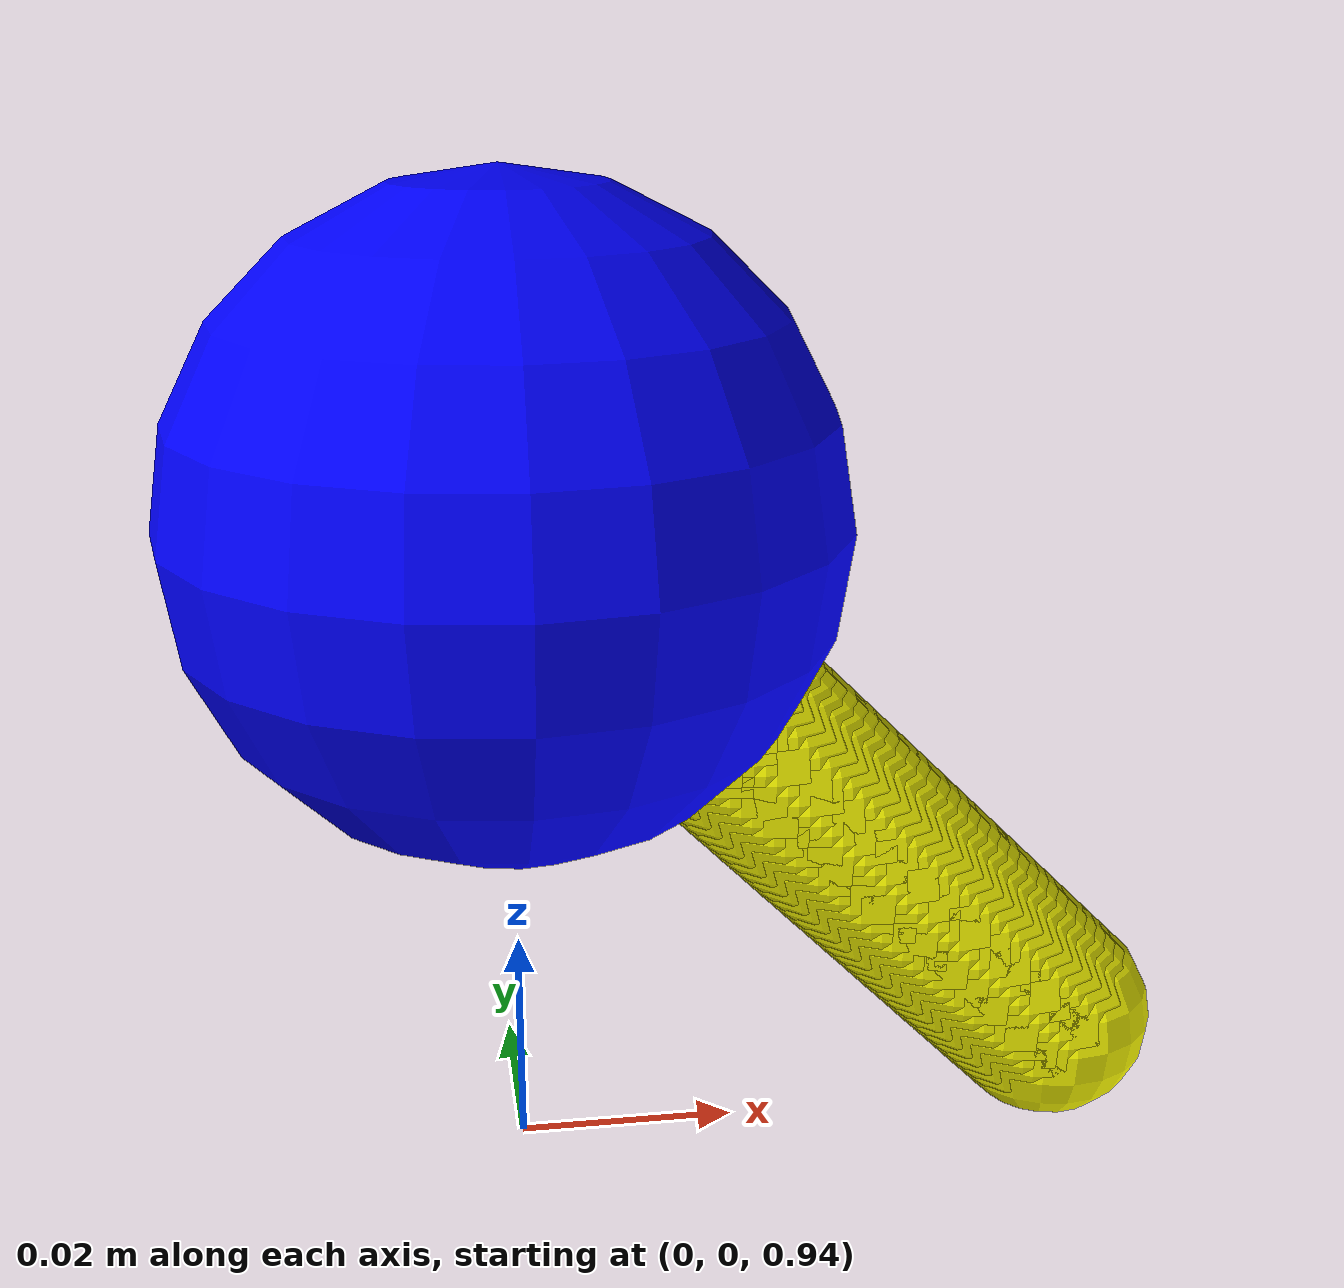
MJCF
<mujoco model="variable_string">
  <compiler angle="radian" autolimits="true"/>

  <option timestep="0.002" integrator="RK4">
    <flag contact="disable"/>
  </option>

  <visual>
    <headlight active="1" ambient="0.3 0.3 0.3" diffuse="0.6 0.6 0.6" specular="0.1 0.1 0.1"/>
    <map force="0.1" zfar="30"/>
  </visual>

  <worldbody>
    <light pos="0 0 5" dir="0 0 -1" diffuse="1 1 1"/>
    <geom type="plane" size="5 5 0.1" rgba="0.8 0.8 0.8 1"/>

    <!-- Anchor point fixed to the world -->
    <site name="anchor_site" pos="0 0 1" size="0.02"/>

    <!-- Mocap body to prescribe motion, and the dynamic body it pulls -->
    <body name="mover_mocap" pos="0 0 1" mocap="true">
        <geom type="box" size="0.01 0.01 0.01" rgba="0 0 1 0.5" contype="0" conaffinity="0"/>
    </body>
    <body name="mover_body" pos="0 0 1">
        <joint type="free"/>
        <geom type="sphere" size="0.03" rgba="0 0 1 1" mass="0.1"/>
        <site name="mover_attachment_site" size="0.01"/>
    </body>

    <!-- Chain of bodies representing the string points -->

    <body name="p_0" pos="0.0 0 1.0">
      <joint type="free" damping="0.1"/>
      <geom type="sphere" size="0.01" rgba="1 1 0 1" mass="0.001"/>
      <site name="s_0" size="0.005"/>
    </body>
    <body name="p_1" pos="0.001 0 0.999">
      <joint type="free" damping="0.1"/>
      <geom type="sphere" size="0.01" rgba="1 1 0 1" mass="0.001"/>
      <site name="s_1" size="0.005"/>
    </body>
    <body name="p_2" pos="0.002 0 0.998">
      <joint type="free" damping="0.1"/>
      <geom type="sphere" size="0.01" rgba="1 1 0 1" mass="0.001"/>
      <site name="s_2" size="0.005"/>
    </body>
    <body name="p_3" pos="0.003 0 0.997">
      <joint type="free" damping="0.1"/>
      <geom type="sphere" size="0.01" rgba="1 1 0 1" mass="0.001"/>
      <site name="s_3" size="0.005"/>
    </body>
    <body name="p_4" pos="0.004 0 0.996">
      <joint type="free" damping="0.1"/>
      <geom type="sphere" size="0.01" rgba="1 1 0 1" mass="0.001"/>
      <site name="s_4" size="0.005"/>
    </body>
    <body name="p_5" pos="0.005 0 0.995">
      <joint type="free" damping="0.1"/>
      <geom type="sphere" size="0.01" rgba="1 1 0 1" mass="0.001"/>
      <site name="s_5" size="0.005"/>
    </body>
    <body name="p_6" pos="0.006 0 0.994">
      <joint type="free" damping="0.1"/>
      <geom type="sphere" size="0.01" rgba="1 1 0 1" mass="0.001"/>
      <site name="s_6" size="0.005"/>
    </body>
    <body name="p_7" pos="0.007 0 0.993">
      <joint type="free" damping="0.1"/>
      <geom type="sphere" size="0.01" rgba="1 1 0 1" mass="0.001"/>
      <site name="s_7" size="0.005"/>
    </body>
    <body name="p_8" pos="0.008 0 0.992">
      <joint type="free" damping="0.1"/>
      <geom type="sphere" size="0.01" rgba="1 1 0 1" mass="0.001"/>
      <site name="s_8" size="0.005"/>
    </body>
    <body name="p_9" pos="0.009000000000000001 0 0.991">
      <joint type="free" damping="0.1"/>
      <geom type="sphere" size="0.01" rgba="1 1 0 1" mass="0.001"/>
      <site name="s_9" size="0.005"/>
    </body>
    <body name="p_10" pos="0.01 0 0.99">
      <joint type="free" damping="0.1"/>
      <geom type="sphere" size="0.01" rgba="1 1 0 1" mass="0.001"/>
      <site name="s_10" size="0.005"/>
    </body>
    <body name="p_11" pos="0.011 0 0.989">
      <joint type="free" damping="0.1"/>
      <geom type="sphere" size="0.01" rgba="1 1 0 1" mass="0.001"/>
      <site name="s_11" size="0.005"/>
    </body>
    <body name="p_12" pos="0.012 0 0.988">
      <joint type="free" damping="0.1"/>
      <geom type="sphere" size="0.01" rgba="1 1 0 1" mass="0.001"/>
      <site name="s_12" size="0.005"/>
    </body>
    <body name="p_13" pos="0.013000000000000001 0 0.987">
      <joint type="free" damping="0.1"/>
      <geom type="sphere" size="0.01" rgba="1 1 0 1" mass="0.001"/>
      <site name="s_13" size="0.005"/>
    </body>
    <body name="p_14" pos="0.014 0 0.986">
      <joint type="free" damping="0.1"/>
      <geom type="sphere" size="0.01" rgba="1 1 0 1" mass="0.001"/>
      <site name="s_14" size="0.005"/>
    </body>
    <body name="p_15" pos="0.015 0 0.985">
      <joint type="free" damping="0.1"/>
      <geom type="sphere" size="0.01" rgba="1 1 0 1" mass="0.001"/>
      <site name="s_15" size="0.005"/>
    </body>
    <body name="p_16" pos="0.016 0 0.984">
      <joint type="free" damping="0.1"/>
      <geom type="sphere" size="0.01" rgba="1 1 0 1" mass="0.001"/>
      <site name="s_16" size="0.005"/>
    </body>
    <body name="p_17" pos="0.017 0 0.983">
      <joint type="free" damping="0.1"/>
      <geom type="sphere" size="0.01" rgba="1 1 0 1" mass="0.001"/>
      <site name="s_17" size="0.005"/>
    </body>
    <body name="p_18" pos="0.018000000000000002 0 0.982">
      <joint type="free" damping="0.1"/>
      <geom type="sphere" size="0.01" rgba="1 1 0 1" mass="0.001"/>
      <site name="s_18" size="0.005"/>
    </body>
    <body name="p_19" pos="0.019 0 0.981">
      <joint type="free" damping="0.1"/>
      <geom type="sphere" size="0.01" rgba="1 1 0 1" mass="0.001"/>
      <site name="s_19" size="0.005"/>
    </body>
    <body name="p_20" pos="0.02 0 0.98">
      <joint type="free" damping="0.1"/>
      <geom type="sphere" size="0.01" rgba="1 1 0 1" mass="0.001"/>
      <site name="s_20" size="0.005"/>
    </body>
    <body name="p_21" pos="0.021 0 0.979">
      <joint type="free" damping="0.1"/>
      <geom type="sphere" size="0.01" rgba="1 1 0 1" mass="0.001"/>
      <site name="s_21" size="0.005"/>
    </body>
    <body name="p_22" pos="0.022 0 0.978">
      <joint type="free" damping="0.1"/>
      <geom type="sphere" size="0.01" rgba="1 1 0 1" mass="0.001"/>
      <site name="s_22" size="0.005"/>
    </body>
    <body name="p_23" pos="0.023 0 0.977">
      <joint type="free" damping="0.1"/>
      <geom type="sphere" size="0.01" rgba="1 1 0 1" mass="0.001"/>
      <site name="s_23" size="0.005"/>
    </body>
    <body name="p_24" pos="0.024 0 0.976">
      <joint type="free" damping="0.1"/>
      <geom type="sphere" size="0.01" rgba="1 1 0 1" mass="0.001"/>
      <site name="s_24" size="0.005"/>
    </body>
    <body name="p_25" pos="0.025 0 0.975">
      <joint type="free" damping="0.1"/>
      <geom type="sphere" size="0.01" rgba="1 1 0 1" mass="0.001"/>
      <site name="s_25" size="0.005"/>
    </body>
    <body name="p_26" pos="0.026000000000000002 0 0.974">
      <joint type="free" damping="0.1"/>
      <geom type="sphere" size="0.01" rgba="1 1 0 1" mass="0.001"/>
      <site name="s_26" size="0.005"/>
    </body>
    <body name="p_27" pos="0.027 0 0.973">
      <joint type="free" damping="0.1"/>
      <geom type="sphere" size="0.01" rgba="1 1 0 1" mass="0.001"/>
      <site name="s_27" size="0.005"/>
    </body>
    <body name="p_28" pos="0.028 0 0.972">
      <joint type="free" damping="0.1"/>
      <geom type="sphere" size="0.01" rgba="1 1 0 1" mass="0.001"/>
      <site name="s_28" size="0.005"/>
    </body>
    <body name="p_29" pos="0.029 0 0.971">
      <joint type="free" damping="0.1"/>
      <geom type="sphere" size="0.01" rgba="1 1 0 1" mass="0.001"/>
      <site name="s_29" size="0.005"/>
    </body>
    <body name="p_30" pos="0.03 0 0.97">
      <joint type="free" damping="0.1"/>
      <geom type="sphere" size="0.01" rgba="1 1 0 1" mass="0.001"/>
      <site name="s_30" size="0.005"/>
    </body>
    <body name="p_31" pos="0.031 0 0.969">
      <joint type="free" damping="0.1"/>
      <geom type="sphere" size="0.01" rgba="1 1 0 1" mass="0.001"/>
      <site name="s_31" size="0.005"/>
    </body>
    <body name="p_32" pos="0.032 0 0.968">
      <joint type="free" damping="0.1"/>
      <geom type="sphere" size="0.01" rgba="1 1 0 1" mass="0.001"/>
      <site name="s_32" size="0.005"/>
    </body>
    <body name="p_33" pos="0.033 0 0.967">
      <joint type="free" damping="0.1"/>
      <geom type="sphere" size="0.01" rgba="1 1 0 1" mass="0.001"/>
      <site name="s_33" size="0.005"/>
    </body>
    <body name="p_34" pos="0.034 0 0.966">
      <joint type="free" damping="0.1"/>
      <geom type="sphere" size="0.01" rgba="1 1 0 1" mass="0.001"/>
      <site name="s_34" size="0.005"/>
    </body>
    <body name="p_35" pos="0.035 0 0.965">
      <joint type="free" damping="0.1"/>
      <geom type="sphere" size="0.01" rgba="1 1 0 1" mass="0.001"/>
      <site name="s_35" size="0.005"/>
    </body>
    <body name="p_36" pos="0.036000000000000004 0 0.964">
      <joint type="free" damping="0.1"/>
      <geom type="sphere" size="0.01" rgba="1 1 0 1" mass="0.001"/>
      <site name="s_36" size="0.005"/>
    </body>
    <body name="p_37" pos="0.037 0 0.963">
      <joint type="free" damping="0.1"/>
      <geom type="sphere" size="0.01" rgba="1 1 0 1" mass="0.001"/>
      <site name="s_37" size="0.005"/>
    </body>
    <body name="p_38" pos="0.038 0 0.962">
      <joint type="free" damping="0.1"/>
      <geom type="sphere" size="0.01" rgba="1 1 0 1" mass="0.001"/>
      <site name="s_38" size="0.005"/>
    </body>
    <body name="p_39" pos="0.039 0 0.961">
      <joint type="free" damping="0.1"/>
      <geom type="sphere" size="0.01" rgba="1 1 0 1" mass="0.001"/>
      <site name="s_39" size="0.005"/>
    </body>
    <body name="p_40" pos="0.04 0 0.96">
      <joint type="free" damping="0.1"/>
      <geom type="sphere" size="0.01" rgba="1 1 0 1" mass="0.001"/>
      <site name="s_40" size="0.005"/>
    </body>
    <body name="p_41" pos="0.041 0 0.959">
      <joint type="free" damping="0.1"/>
      <geom type="sphere" size="0.01" rgba="1 1 0 1" mass="0.001"/>
      <site name="s_41" size="0.005"/>
    </body>
    <body name="p_42" pos="0.042 0 0.958">
      <joint type="free" damping="0.1"/>
      <geom type="sphere" size="0.01" rgba="1 1 0 1" mass="0.001"/>
      <site name="s_42" size="0.005"/>
    </body>
    <body name="p_43" pos="0.043000000000000003 0 0.957">
      <joint type="free" damping="0.1"/>
      <geom type="sphere" size="0.01" rgba="1 1 0 1" mass="0.001"/>
      <site name="s_43" size="0.005"/>
    </body>
    <body name="p_44" pos="0.044 0 0.956">
      <joint type="free" damping="0.1"/>
      <geom type="sphere" size="0.01" rgba="1 1 0 1" mass="0.001"/>
      <site name="s_44" size="0.005"/>
    </body>
    <body name="p_45" pos="0.045 0 0.955">
      <joint type="free" damping="0.1"/>
      <geom type="sphere" size="0.01" rgba="1 1 0 1" mass="0.001"/>
      <site name="s_45" size="0.005"/>
    </body>
    <body name="p_46" pos="0.046 0 0.954">
      <joint type="free" damping="0.1"/>
      <geom type="sphere" size="0.01" rgba="1 1 0 1" mass="0.001"/>
      <site name="s_46" size="0.005"/>
    </body>
    <body name="p_47" pos="0.047 0 0.953">
      <joint type="free" damping="0.1"/>
      <geom type="sphere" size="0.01" rgba="1 1 0 1" mass="0.001"/>
      <site name="s_47" size="0.005"/>
    </body>
    <body name="p_48" pos="0.048 0 0.952">
      <joint type="free" damping="0.1"/>
      <geom type="sphere" size="0.01" rgba="1 1 0 1" mass="0.001"/>
      <site name="s_48" size="0.005"/>
    </body>
    <body name="p_49" pos="0.049 0 0.951">
      <joint type="free" damping="0.1"/>
      <geom type="sphere" size="0.01" rgba="1 1 0 1" mass="0.001"/>
      <site name="s_49" size="0.005"/>
    </body>
    <body name="p_50" pos="0.05 0 0.95">
      <joint type="free" damping="0.1"/>
      <geom type="sphere" size="0.01" rgba="1 1 0 1" mass="0.001"/>
      <site name="s_50" size="0.005"/>
    </body>
    <body name="p_51" pos="0.051000000000000004 0 0.949">
      <joint type="free" damping="0.1"/>
      <geom type="sphere" size="0.01" rgba="1 1 0 1" mass="0.001"/>
      <site name="s_51" size="0.005"/>
    </body>
  </worldbody>

  <tendon>
    <!-- Tendons connecting the points -->
    <spatial name="tendon_anchor_to_p0" rgba="0.5 0.5 0.5 1">
        <site site="anchor_site"/>
        <site site="s_0"/>
    </spatial>

    <spatial name="tendon_0" limited="true" range="0 0.2" rgba="0.9 0.2 0.2 1">
        <site site="s_0"/>
        <site site="s_1"/>
    </spatial>
    <spatial name="tendon_1" limited="true" range="0 0.2" rgba="0.9 0.2 0.2 1">
        <site site="s_1"/>
        <site site="s_2"/>
    </spatial>
    <spatial name="tendon_2" limited="true" range="0 0.2" rgba="0.9 0.2 0.2 1">
        <site site="s_2"/>
        <site site="s_3"/>
    </spatial>
    <spatial name="tendon_3" limited="true" range="0 0.2" rgba="0.9 0.2 0.2 1">
        <site site="s_3"/>
        <site site="s_4"/>
    </spatial>
    <spatial name="tendon_4" limited="true" range="0 0.2" rgba="0.9 0.2 0.2 1">
        <site site="s_4"/>
        <site site="s_5"/>
    </spatial>
    <spatial name="tendon_5" limited="true" range="0 0.2" rgba="0.9 0.2 0.2 1">
        <site site="s_5"/>
        <site site="s_6"/>
    </spatial>
    <spatial name="tendon_6" limited="true" range="0 0.2" rgba="0.9 0.2 0.2 1">
        <site site="s_6"/>
        <site site="s_7"/>
    </spatial>
    <spatial name="tendon_7" limited="true" range="0 0.2" rgba="0.9 0.2 0.2 1">
        <site site="s_7"/>
        <site site="s_8"/>
    </spatial>
    <spatial name="tendon_8" limited="true" range="0 0.2" rgba="0.9 0.2 0.2 1">
        <site site="s_8"/>
        <site site="s_9"/>
    </spatial>
    <spatial name="tendon_9" limited="true" range="0 0.2" rgba="0.9 0.2 0.2 1">
        <site site="s_9"/>
        <site site="s_10"/>
    </spatial>
    <spatial name="tendon_10" limited="true" range="0 0.2" rgba="0.9 0.2 0.2 1">
        <site site="s_10"/>
        <site site="s_11"/>
    </spatial>
    <spatial name="tendon_11" limited="true" range="0 0.2" rgba="0.9 0.2 0.2 1">
        <site site="s_11"/>
        <site site="s_12"/>
    </spatial>
    <spatial name="tendon_12" limited="true" range="0 0.2" rgba="0.9 0.2 0.2 1">
        <site site="s_12"/>
        <site site="s_13"/>
    </spatial>
    <spatial name="tendon_13" limited="true" range="0 0.2" rgba="0.9 0.2 0.2 1">
        <site site="s_13"/>
        <site site="s_14"/>
    </spatial>
    <spatial name="tendon_14" limited="true" range="0 0.2" rgba="0.9 0.2 0.2 1">
        <site site="s_14"/>
        <site site="s_15"/>
    </spatial>
    <spatial name="tendon_15" limited="true" range="0 0.2" rgba="0.9 0.2 0.2 1">
        <site site="s_15"/>
        <site site="s_16"/>
    </spatial>
    <spatial name="tendon_16" limited="true" range="0 0.2" rgba="0.9 0.2 0.2 1">
        <site site="s_16"/>
        <site site="s_17"/>
    </spatial>
    <spatial name="tendon_17" limited="true" range="0 0.2" rgba="0.9 0.2 0.2 1">
        <site site="s_17"/>
        <site site="s_18"/>
    </spatial>
    <spatial name="tendon_18" limited="true" range="0 0.2" rgba="0.9 0.2 0.2 1">
        <site site="s_18"/>
        <site site="s_19"/>
    </spatial>
    <spatial name="tendon_19" limited="true" range="0 0.2" rgba="0.9 0.2 0.2 1">
        <site site="s_19"/>
        <site site="s_20"/>
    </spatial>
    <spatial name="tendon_20" limited="true" range="0 0.2" rgba="0.9 0.2 0.2 1">
        <site site="s_20"/>
        <site site="s_21"/>
    </spatial>
    <spatial name="tendon_21" limited="true" range="0 0.2" rgba="0.9 0.2 0.2 1">
        <site site="s_21"/>
        <site site="s_22"/>
    </spatial>
    <spatial name="tendon_22" limited="true" range="0 0.2" rgba="0.9 0.2 0.2 1">
        <site site="s_22"/>
        <site site="s_23"/>
    </spatial>
    <spatial name="tendon_23" limited="true" range="0 0.2" rgba="0.9 0.2 0.2 1">
        <site site="s_23"/>
        <site site="s_24"/>
    </spatial>
    <spatial name="tendon_24" limited="true" range="0 0.2" rgba="0.9 0.2 0.2 1">
        <site site="s_24"/>
        <site site="s_25"/>
    </spatial>
    <spatial name="tendon_25" limited="true" range="0 0.2" rgba="0.9 0.2 0.2 1">
        <site site="s_25"/>
        <site site="s_26"/>
    </spatial>
    <spatial name="tendon_26" limited="true" range="0 0.2" rgba="0.9 0.2 0.2 1">
        <site site="s_26"/>
        <site site="s_27"/>
    </spatial>
    <spatial name="tendon_27" limited="true" range="0 0.2" rgba="0.9 0.2 0.2 1">
        <site site="s_27"/>
        <site site="s_28"/>
    </spatial>
    <spatial name="tendon_28" limited="true" range="0 0.2" rgba="0.9 0.2 0.2 1">
        <site site="s_28"/>
        <site site="s_29"/>
    </spatial>
    <spatial name="tendon_29" limited="true" range="0 0.2" rgba="0.9 0.2 0.2 1">
        <site site="s_29"/>
        <site site="s_30"/>
    </spatial>
    <spatial name="tendon_30" limited="true" range="0 0.2" rgba="0.9 0.2 0.2 1">
        <site site="s_30"/>
        <site site="s_31"/>
    </spatial>
    <spatial name="tendon_31" limited="true" range="0 0.2" rgba="0.9 0.2 0.2 1">
        <site site="s_31"/>
        <site site="s_32"/>
    </spatial>
    <spatial name="tendon_32" limited="true" range="0 0.2" rgba="0.9 0.2 0.2 1">
        <site site="s_32"/>
        <site site="s_33"/>
    </spatial>
    <spatial name="tendon_33" limited="true" range="0 0.2" rgba="0.9 0.2 0.2 1">
        <site site="s_33"/>
        <site site="s_34"/>
    </spatial>
    <spatial name="tendon_34" limited="true" range="0 0.2" rgba="0.9 0.2 0.2 1">
        <site site="s_34"/>
        <site site="s_35"/>
    </spatial>
    <spatial name="tendon_35" limited="true" range="0 0.2" rgba="0.9 0.2 0.2 1">
        <site site="s_35"/>
        <site site="s_36"/>
    </spatial>
    <spatial name="tendon_36" limited="true" range="0 0.2" rgba="0.9 0.2 0.2 1">
        <site site="s_36"/>
        <site site="s_37"/>
    </spatial>
    <spatial name="tendon_37" limited="true" range="0 0.2" rgba="0.9 0.2 0.2 1">
        <site site="s_37"/>
        <site site="s_38"/>
    </spatial>
    <spatial name="tendon_38" limited="true" range="0 0.2" rgba="0.9 0.2 0.2 1">
        <site site="s_38"/>
        <site site="s_39"/>
    </spatial>
    <spatial name="tendon_39" limited="true" range="0 0.2" rgba="0.9 0.2 0.2 1">
        <site site="s_39"/>
        <site site="s_40"/>
    </spatial>
    <spatial name="tendon_40" limited="true" range="0 0.2" rgba="0.9 0.2 0.2 1">
        <site site="s_40"/>
        <site site="s_41"/>
    </spatial>
    <spatial name="tendon_41" limited="true" range="0 0.2" rgba="0.9 0.2 0.2 1">
        <site site="s_41"/>
        <site site="s_42"/>
    </spatial>
    <spatial name="tendon_42" limited="true" range="0 0.2" rgba="0.9 0.2 0.2 1">
        <site site="s_42"/>
        <site site="s_43"/>
    </spatial>
    <spatial name="tendon_43" limited="true" range="0 0.2" rgba="0.9 0.2 0.2 1">
        <site site="s_43"/>
        <site site="s_44"/>
    </spatial>
    <spatial name="tendon_44" limited="true" range="0 0.2" rgba="0.9 0.2 0.2 1">
        <site site="s_44"/>
        <site site="s_45"/>
    </spatial>
    <spatial name="tendon_45" limited="true" range="0 0.2" rgba="0.9 0.2 0.2 1">
        <site site="s_45"/>
        <site site="s_46"/>
    </spatial>
    <spatial name="tendon_46" limited="true" range="0 0.2" rgba="0.9 0.2 0.2 1">
        <site site="s_46"/>
        <site site="s_47"/>
    </spatial>
    <spatial name="tendon_47" limited="true" range="0 0.2" rgba="0.9 0.2 0.2 1">
        <site site="s_47"/>
        <site site="s_48"/>
    </spatial>
    <spatial name="tendon_48" limited="true" range="0 0.2" rgba="0.9 0.2 0.2 1">
        <site site="s_48"/>
        <site site="s_49"/>
    </spatial>
    <spatial name="tendon_49" limited="true" range="0 0.2" rgba="0.9 0.2 0.2 1">
        <site site="s_49"/>
        <site site="s_50"/>
    </spatial>
    <spatial name="tendon_50" limited="true" range="0 0.2" rgba="0.9 0.2 0.2 1">
        <site site="s_50"/>
        <site site="s_51"/>
    </spatial>
    <spatial name="tendon_p_last_to_mover" rgba="0.5 0.5 0.5 1">
        <site site="s_51"/>
        <site site="mover_attachment_site"/>
    </spatial>
  </tendon>

  <actuator>

    <general name="actuator_0" tendon="tendon_0" gainprm="1"/>
    <general name="actuator_1" tendon="tendon_1" gainprm="1"/>
    <general name="actuator_2" tendon="tendon_2" gainprm="1"/>
    <general name="actuator_3" tendon="tendon_3" gainprm="1"/>
    <general name="actuator_4" tendon="tendon_4" gainprm="1"/>
    <general name="actuator_5" tendon="tendon_5" gainprm="1"/>
    <general name="actuator_6" tendon="tendon_6" gainprm="1"/>
    <general name="actuator_7" tendon="tendon_7" gainprm="1"/>
    <general name="actuator_8" tendon="tendon_8" gainprm="1"/>
    <general name="actuator_9" tendon="tendon_9" gainprm="1"/>
    <general name="actuator_10" tendon="tendon_10" gainprm="1"/>
    <general name="actuator_11" tendon="tendon_11" gainprm="1"/>
    <general name="actuator_12" tendon="tendon_12" gainprm="1"/>
    <general name="actuator_13" tendon="tendon_13" gainprm="1"/>
    <general name="actuator_14" tendon="tendon_14" gainprm="1"/>
    <general name="actuator_15" tendon="tendon_15" gainprm="1"/>
    <general name="actuator_16" tendon="tendon_16" gainprm="1"/>
    <general name="actuator_17" tendon="tendon_17" gainprm="1"/>
    <general name="actuator_18" tendon="tendon_18" gainprm="1"/>
    <general name="actuator_19" tendon="tendon_19" gainprm="1"/>
    <general name="actuator_20" tendon="tendon_20" gainprm="1"/>
    <general name="actuator_21" tendon="tendon_21" gainprm="1"/>
    <general name="actuator_22" tendon="tendon_22" gainprm="1"/>
    <general name="actuator_23" tendon="tendon_23" gainprm="1"/>
    <general name="actuator_24" tendon="tendon_24" gainprm="1"/>
    <general name="actuator_25" tendon="tendon_25" gainprm="1"/>
    <general name="actuator_26" tendon="tendon_26" gainprm="1"/>
    <general name="actuator_27" tendon="tendon_27" gainprm="1"/>
    <general name="actuator_28" tendon="tendon_28" gainprm="1"/>
    <general name="actuator_29" tendon="tendon_29" gainprm="1"/>
    <general name="actuator_30" tendon="tendon_30" gainprm="1"/>
    <general name="actuator_31" tendon="tendon_31" gainprm="1"/>
    <general name="actuator_32" tendon="tendon_32" gainprm="1"/>
    <general name="actuator_33" tendon="tendon_33" gainprm="1"/>
    <general name="actuator_34" tendon="tendon_34" gainprm="1"/>
    <general name="actuator_35" tendon="tendon_35" gainprm="1"/>
    <general name="actuator_36" tendon="tendon_36" gainprm="1"/>
    <general name="actuator_37" tendon="tendon_37" gainprm="1"/>
    <general name="actuator_38" tendon="tendon_38" gainprm="1"/>
    <general name="actuator_39" tendon="tendon_39" gainprm="1"/>
    <general name="actuator_40" tendon="tendon_40" gainprm="1"/>
    <general name="actuator_41" tendon="tendon_41" gainprm="1"/>
    <general name="actuator_42" tendon="tendon_42" gainprm="1"/>
    <general name="actuator_43" tendon="tendon_43" gainprm="1"/>
    <general name="actuator_44" tendon="tendon_44" gainprm="1"/>
    <general name="actuator_45" tendon="tendon_45" gainprm="1"/>
    <general name="actuator_46" tendon="tendon_46" gainprm="1"/>
    <general name="actuator_47" tendon="tendon_47" gainprm="1"/>
    <general name="actuator_48" tendon="tendon_48" gainprm="1"/>
    <general name="actuator_49" tendon="tendon_49" gainprm="1"/>
    <general name="actuator_50" tendon="tendon_50" gainprm="1"/>
  </actuator>

  <equality>
    <!-- Weld the mover body to the mocap body -->
    <weld body1="mover_body" body2="mover_mocap" solimp="0.9 0.95 0.001" solref="0.02 1"/>
  </equality>

</mujoco>
